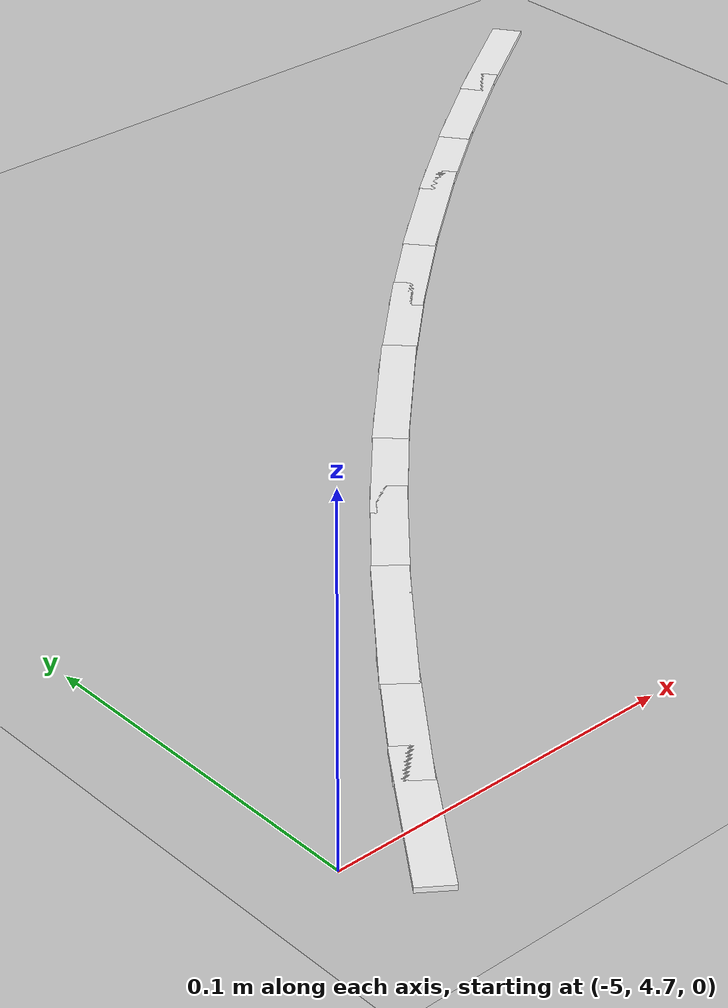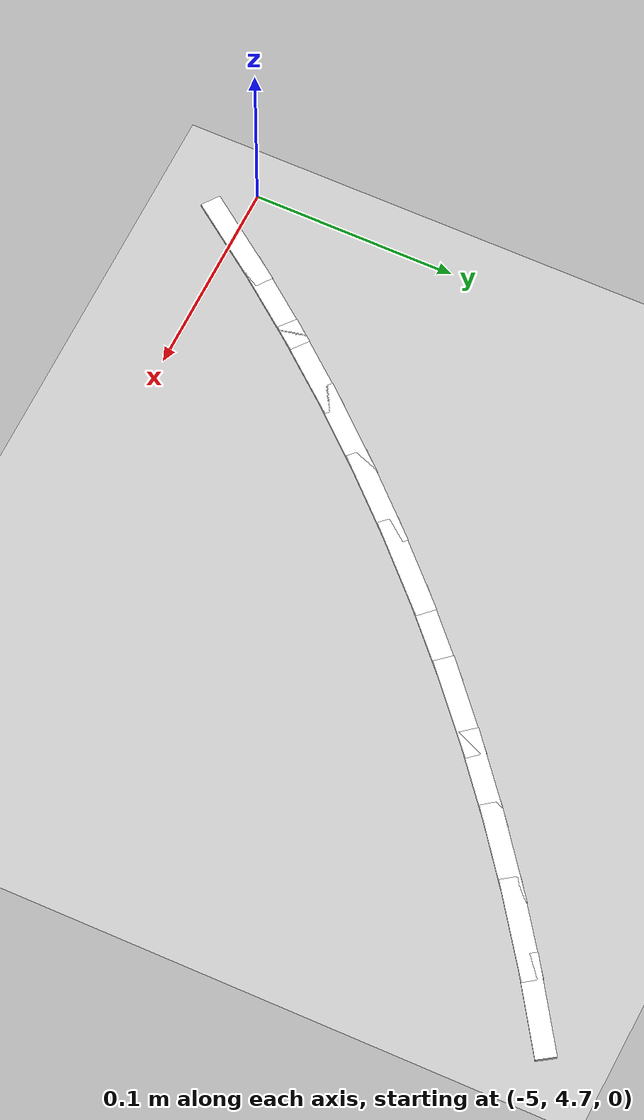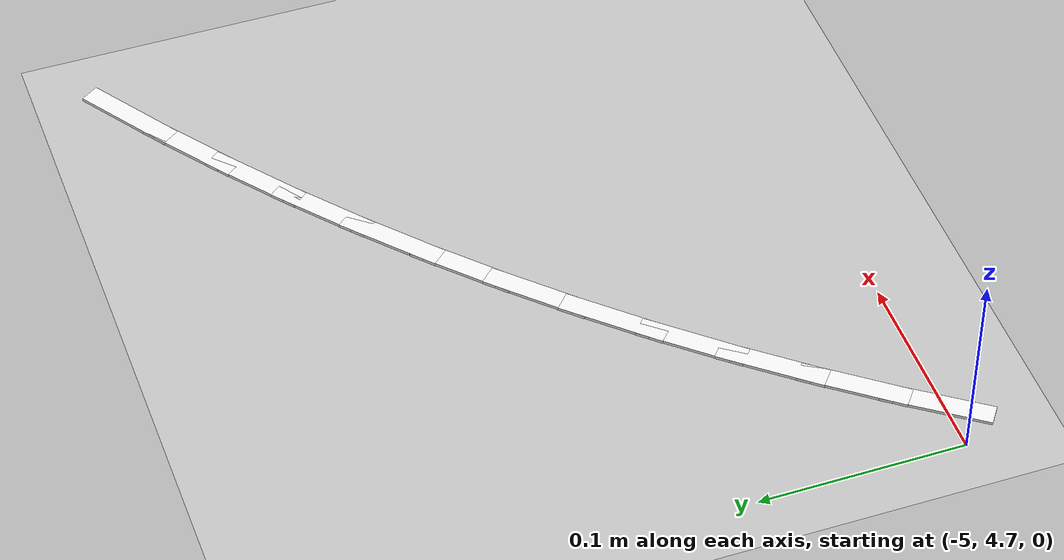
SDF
<sdf version="1.7">
 <world name="default">
  <model name="ground_plane">
   <static>1</static>
   <link name="link">
    <collision name="collision">
     <geometry><plane><normal>0 0 1</normal><size>100 100</size></plane></geometry>
     <surface>
      <contact><collide_bitmask>65535</collide_bitmask></contact>
      <friction><ode><mu>100</mu><mu2>50</mu2></ode></friction>
     </surface>
    </collision>
    <visual name="visual">
     <cast_shadows>0</cast_shadows>
     <geometry><plane><normal>0 0 1</normal><size>100 100</size></plane></geometry>
     <material>
      <script><uri>file://media/materials/scripts/gazebo.material</uri><name>Gazebo/Grey</name></script>
     </material>
    </visual>
   </link>
  </model>
  <model name="lane_line_right_268">
   <static>1</static>
   <link name="link">
    <pose>0 0 -0.004 0 -0 0</pose>
    <visual name="visual">
     <geometry><box><size>0.0521 0.01 0.01</size></box></geometry>
     <material><ambient>1 1 1 1</ambient><diffuse>1 1 1 1</diffuse></material>
    </visual>
    <collision name="collision"><geometry><box><size>0.0521 0.01 0.01</size></box></geometry></collision>
   </link>
   <pose>-4.67061 4.99498 0 0 0 -2.54854</pose>
  </model>
  <model name="lane_line_right_269">
   <static>1</static>
   <link name="link">
    <pose>0 0 -0.004 0 -0 0</pose>
    <visual name="visual">
     <geometry><box><size>0.0521 0.01 0.01</size></box></geometry>
     <material><ambient>1 1 1 1</ambient><diffuse>1 1 1 1</diffuse></material>
    </visual>
    <collision name="collision"><geometry><box><size>0.0521 0.01 0.01</size></box></geometry></collision>
   </link>
   <pose>-4.70215 4.97297 0 0 0 -2.51648</pose>
  </model>
  <model name="lane_line_right_270">
   <static>1</static>
   <link name="link">
    <pose>0 0 -0.004 0 -0 0</pose>
    <visual name="visual">
     <geometry><box><size>0.0521 0.01 0.01</size></box></geometry>
     <material><ambient>1 1 1 1</ambient><diffuse>1 1 1 1</diffuse></material>
    </visual>
    <collision name="collision"><geometry><box><size>0.0521 0.01 0.01</size></box></geometry></collision>
   </link>
   <pose>-4.73298 4.94997 0 0 0 -2.48442</pose>
  </model>
  <model name="lane_line_right_271">
   <static>1</static>
   <link name="link">
    <pose>0 0 -0.004 0 -0 0</pose>
    <visual name="visual">
     <geometry><box><size>0.0521 0.01 0.01</size></box></geometry>
     <material><ambient>1 1 1 1</ambient><diffuse>1 1 1 1</diffuse></material>
    </visual>
    <collision name="collision"><geometry><box><size>0.0521 0.01 0.01</size></box></geometry></collision>
   </link>
   <pose>-4.76305 4.92599 0 0 0 -2.45237</pose>
  </model>
  <model name="lane_line_right_272">
   <static>1</static>
   <link name="link">
    <pose>0 0 -0.004 0 -0 0</pose>
    <visual name="visual">
     <geometry><box><size>0.0521 0.01 0.01</size></box></geometry>
     <material><ambient>1 1 1 1</ambient><diffuse>1 1 1 1</diffuse></material>
    </visual>
    <collision name="collision"><geometry><box><size>0.0521 0.01 0.01</size></box></geometry></collision>
   </link>
   <pose>-4.79233 4.90105 0 0 0 -2.42031</pose>
  </model>
  <model name="lane_line_right_273">
   <static>1</static>
   <link name="link">
    <pose>0 0 -0.004 0 -0 0</pose>
    <visual name="visual">
     <geometry><box><size>0.0521 0.01 0.01</size></box></geometry>
     <material><ambient>1 1 1 1</ambient><diffuse>1 1 1 1</diffuse></material>
    </visual>
    <collision name="collision"><geometry><box><size>0.0521 0.01 0.01</size></box></geometry></collision>
   </link>
   <pose>-4.82081 4.8752 0 0 0 -2.38825</pose>
  </model>
  <model name="lane_line_right_274">
   <static>1</static>
   <link name="link">
    <pose>0 0 -0.004 0 -0 0</pose>
    <visual name="visual">
     <geometry><box><size>0.0521 0.01 0.01</size></box></geometry>
     <material><ambient>1 1 1 1</ambient><diffuse>1 1 1 1</diffuse></material>
    </visual>
    <collision name="collision"><geometry><box><size>0.0521 0.01 0.01</size></box></geometry></collision>
   </link>
   <pose>-4.84844 4.84844 0 0 0 -2.35619</pose>
  </model>
  <model name="lane_line_right_275">
   <static>1</static>
   <link name="link">
    <pose>0 0 -0.004 0 -0 0</pose>
    <visual name="visual">
     <geometry><box><size>0.0521 0.01 0.01</size></box></geometry>
     <material><ambient>1 1 1 1</ambient><diffuse>1 1 1 1</diffuse></material>
    </visual>
    <collision name="collision"><geometry><box><size>0.0521 0.01 0.01</size></box></geometry></collision>
   </link>
   <pose>-4.8752 4.82081 0 0 0 -2.32414</pose>
  </model>
  <model name="lane_line_right_276">
   <static>1</static>
   <link name="link">
    <pose>0 0 -0.004 0 -0 0</pose>
    <visual name="visual">
     <geometry><box><size>0.0521 0.01 0.01</size></box></geometry>
     <material><ambient>1 1 1 1</ambient><diffuse>1 1 1 1</diffuse></material>
    </visual>
    <collision name="collision"><geometry><box><size>0.0521 0.01 0.01</size></box></geometry></collision>
   </link>
   <pose>-4.90105 4.79233 0 0 0 -2.29208</pose>
  </model>
  <model name="lane_line_right_277">
   <static>1</static>
   <link name="link">
    <pose>0 0 -0.004 0 -0 0</pose>
    <visual name="visual">
     <geometry><box><size>0.0521 0.01 0.01</size></box></geometry>
     <material><ambient>1 1 1 1</ambient><diffuse>1 1 1 1</diffuse></material>
    </visual>
    <collision name="collision"><geometry><box><size>0.0521 0.01 0.01</size></box></geometry></collision>
   </link>
   <pose>-4.92599 4.76305 0 0 0 -2.26002</pose>
  </model>
  <model name="lane_line_right_278">
   <static>1</static>
   <link name="link">
    <pose>0 0 -0.004 0 -0 0</pose>
    <visual name="visual">
     <geometry><box><size>0.0521 0.01 0.01</size></box></geometry>
     <material><ambient>1 1 1 1</ambient><diffuse>1 1 1 1</diffuse></material>
    </visual>
    <collision name="collision"><geometry><box><size>0.0521 0.01 0.01</size></box></geometry></collision>
   </link>
   <pose>-4.94997 4.73298 0 0 0 -2.22797</pose>
  </model>
  <model name="lane_line_right_279">
   <static>1</static>
   <link name="link">
    <pose>0 0 -0.004 0 -0 0</pose>
    <visual name="visual">
     <geometry><box><size>0.0521 0.01 0.01</size></box></geometry>
     <material><ambient>1 1 1 1</ambient><diffuse>1 1 1 1</diffuse></material>
    </visual>
    <collision name="collision"><geometry><box><size>0.0521 0.01 0.01</size></box></geometry></collision>
   </link>
   <pose>-4.97297 4.70215 0 0 0 -2.19591</pose>
  </model>
 </world>
</sdf>
